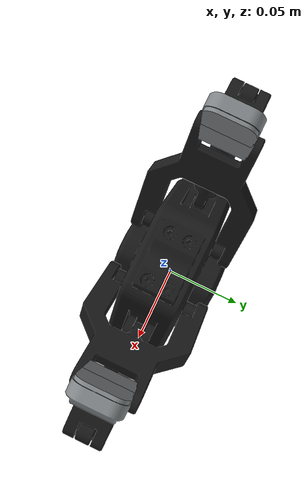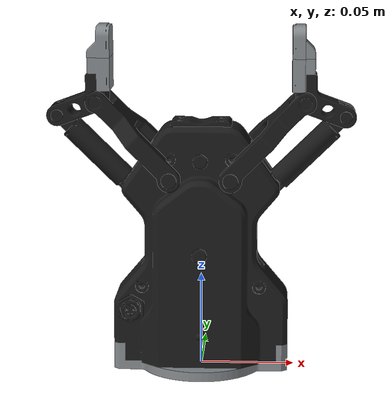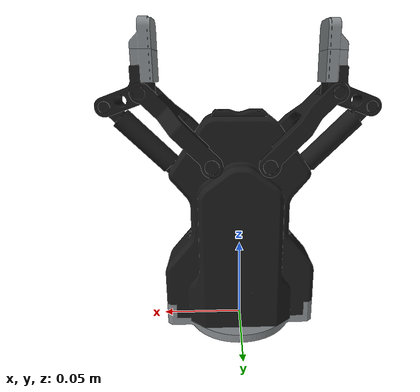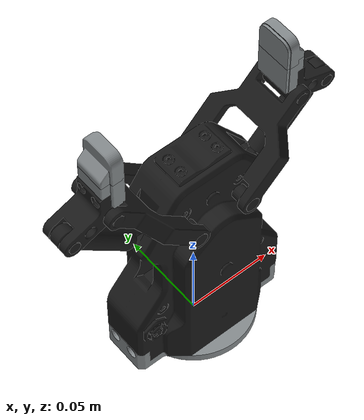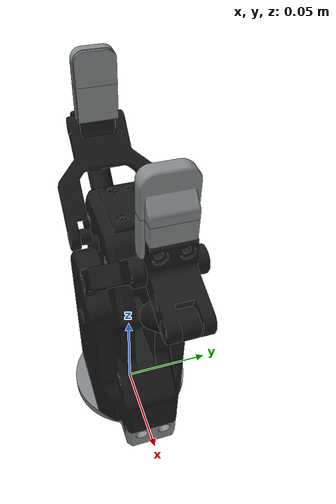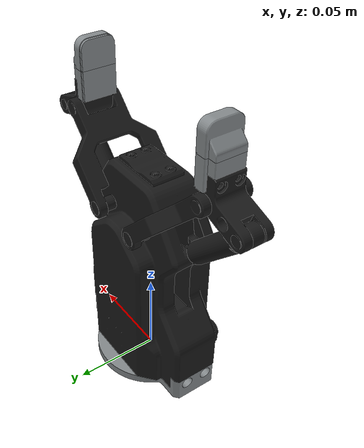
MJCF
<mujoco model="dh_ag95_gripper">
    <compiler angle="radian" meshdir="meshes" autolimits="true"/>

    <option impratio="10"/>

    <default>
      <joint range="0 0.943"/>
      <general
        dyntype="none" gaintype="fixed"
        biastype="affine" dynprm="1 0 0"
        gainprm="10 0 0" biasprm="0 -10 -0.1"
        forcerange="-5 5" ctrlrange="0 0.943"
      />

      <default class="visual">
        <geom group="2" type="mesh" contype="0" conaffinity="0" density="0"/>
      </default>
      <default class="collision">
        <geom group="3" type="mesh" density="2700"/>

        <default class="pad_box_0">
          <geom  solimp="0.95 0.99 0.001" solref="0.004 1" priority="1" rgba="0.45 0.45 0.45 1"/>
        </default>
        <default class="pad_box_1">
          <geom  solimp="0.95 0.99 0.001" solref="0.004 1" priority="1" rgba="0.55 0.55 0.55 1"/>
        </default>

        <default class="sphere_collision">
          <geom type="sphere" size="0.0006" rgba="1 0 0 1" group="3" solimp="0.95 0.99 0.001" solref="0.004 1" priority="1" mass="1e-6"/>
        </default>

      </default>
    </default>

    <asset>
      <material name="grey" specular="0.5" shininess="0.25" rgba="0.51764705882 0.53764705882 0.54764705882 1"/>
      <material name="black" specular="0.5" shininess="0.25" rgba="0.1 0.1 0.1 1"/>

      <mesh name="base_link" file="base_link.stl" scale="0.001 0.001 0.001"/>
      <mesh name="gripper_body" file="gripper_body.stl" scale="0.001 0.001 0.001"/>
      <mesh name="outer_knuckle" file="outer_knuckle.stl" scale="0.001 0.001 0.001"/>
      <mesh name="inner_knuckle" file="inner_knuckle.stl" scale="0.001 0.001 0.001"/>
      <mesh name="finger" file="finger.stl" scale="0.001 0.001 0.001"/>
      <mesh name="finger_pad_0" file="finger_pad_0.stl" scale="1 1 1"/>
      <mesh name="finger_pad_1" file="finger_pad_1.stl" scale="1 1 1"/>
    </asset>

    <worldbody>
        <body name="base">
          <geom class="collision" mesh="base_link"/>
          <geom class="visual" mesh="base_link" material="grey"/>
          <geom class="collision" mesh="gripper_body"/>
          <geom class="visual" mesh="gripper_body" material="black"/>
        </body>

        <body name="left_inner_knuckle" pos="0.016 -0.0254 0.10586" quat="0.922844 0 0.385173 0">
          <joint name="left_inner_knuckle_joint" pos="0 0 0" axis="0 -1 0"/>

          <geom class="collision" pos="-0.016 0.0254 -0.10586" mesh="inner_knuckle"/>
          <geom class="visual" pos="-0.016 0.0254 -0.10586" mesh="inner_knuckle" material="black"/>

        </body>
        <body name="left_outer_knuckle" pos="0.036673 -0.00875 0.098336" quat="0.924908 0 -0.380191 0">
          <joint name="left_outer_knuckle_joint" pos="0 0 0" axis="0 -1 0"/>

          <geom class="collision" pos="-0.036673 0.00875 -0.098336" mesh="outer_knuckle"/>
          <geom class="visual" pos="-0.036673 0.00875 -0.098336" mesh="outer_knuckle" material="black"/>

          <body name="left_finger" pos="0.055 0 0" quat="0.924908 0 0.380191 0">
            <joint name="left_finger_joint" pos="0 0 0" axis="0 1 0"/>

            <geom class="collision" pos="-0.091673 0.00875 -0.098336" mesh="finger"/>
            <geom class="visual" pos="-0.091673 0.00875 -0.098336" mesh="finger" material="black"/>

            <geom class="pad_box_0" pos="-0.091673 0.00875 -0.098336" mesh="finger_pad_0"/>
            <geom class="visual" pos="-0.091673 0.00875 -0.098336" mesh="finger_pad_0" material="grey"/>
            <geom class="pad_box_1" pos="-0.091673 0.00875 -0.098336" mesh="finger_pad_1"/>
            <geom class="visual" pos="-0.091673 0.00875 -0.098336" mesh="finger_pad_1" material="grey"/>

            <geom pos="-0.028 0 0.02" class="sphere_collision"/>
            <geom pos="-0.028 0.0175 0.02" class="sphere_collision"/>
            <geom pos="-0.028 0 0.032" class="sphere_collision"/>
            <geom pos="-0.028 0.0175 0.032" class="sphere_collision"/>
            <geom pos="-0.028 0 0.044" class="sphere_collision"/>
            <geom pos="-0.028 0.0175 0.044" class="sphere_collision"/>

          </body>
        </body>
        <body name="right_inner_knuckle" pos="-0.016 0.0254 0.10586" quat="0 0.385173 0 -0.922844">
          <joint name="right_inner_knuckle_joint" pos="0 0 0" axis="0 -1 0"/>

          <geom class="collision" pos="-0.016 0.0254 -0.10586" mesh="inner_knuckle"/>
          <geom class="visual" pos="-0.016 0.0254 -0.10586" mesh="inner_knuckle" material="black"/>
        </body>
        <body name="right_outer_knuckle" pos="-0.036673 0.00875 0.098336" quat="0 0.380191 0 0.924908">
          <joint name="right_outer_knuckle_joint" pos="0 0 0" axis="0 -1 0"/>
          <geom class="collision" pos="-0.036673 0.00875 -0.098336" mesh="outer_knuckle"/>
          <geom class="visual" pos="-0.036673 0.00875 -0.098336" mesh="outer_knuckle" material="black"/>

          <body name="right_finger" pos="0.055 0 0" quat="0.924908 0 0.380191 0">
            <joint name="right_finger_joint" pos="0 0 0" axis="0 1 0"/>

            <geom class="collision" pos="-0.091673 0.00875 -0.098336" mesh="finger"/>
            <geom class="visual" pos="-0.091673 0.00875 -0.098336" mesh="finger" material="black"/>

            <geom class="pad_box_0" pos="-0.091673 0.00875 -0.098336" mesh="finger_pad_0"/>
            <geom class="visual" pos="-0.091673 0.00875 -0.098336" mesh="finger_pad_0" material="grey"/>
            <geom class="pad_box_1" pos="-0.091673 0.00875 -0.098336" mesh="finger_pad_1"/>
            <geom class="visual" pos="-0.091673 0.00875 -0.098336" mesh="finger_pad_1" material="grey"/>

            <geom pos="-0.028 0 0.02" class="sphere_collision"/>
            <geom pos="-0.028 0.0175 0.02" class="sphere_collision"/>
            <geom pos="-0.028 0 0.032" class="sphere_collision"/>
            <geom pos="-0.028 0.0175 0.032" class="sphere_collision"/>
            <geom pos="-0.028 0 0.044" class="sphere_collision"/>
            <geom pos="-0.028 0.0175 0.044" class="sphere_collision"/>

          </body>
        </body>
    </worldbody>

    <contact>
      <exclude body1="base" body2="left_inner_knuckle"/>
      <exclude body1="base" body2="left_outer_knuckle"/>
      <exclude body1="base" body2="right_inner_knuckle"/>
      <exclude body1="base" body2="right_outer_knuckle"/>
      <exclude body1="left_inner_knuckle" body2="left_finger"/>
      <exclude body1="right_inner_knuckle" body2="right_finger"/>
    </contact>

    <tendon>
      <fixed name="split">
        <joint joint="left_outer_knuckle_joint" coef="0.5"/>
        <joint joint="right_outer_knuckle_joint" coef="0.5"/>
      </fixed>
    </tendon>

    <equality>
      <connect anchor="-0.020673 0 0.007524" body1="left_finger" body2="left_inner_knuckle" solimp="0.95 0.99 0.001" solref="0.005 1"/>
      <connect anchor="-0.020673 0 0.007524" body1="right_finger" body2="right_inner_knuckle" solimp="0.95 0.99 0.001" solref="0.005 1"/>
      <joint joint1="left_outer_knuckle_joint" joint2="right_outer_knuckle_joint" polycoef="0 1 0 0 0" solimp="0.95 0.99 0.001"
        solref="0.005 1"/>
    </equality>

    <actuator>
      <general name="fingers_actuator" tendon="split"/>
    </actuator>

  </mujoco>
